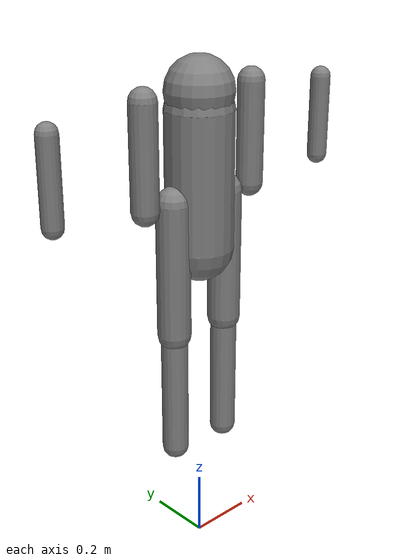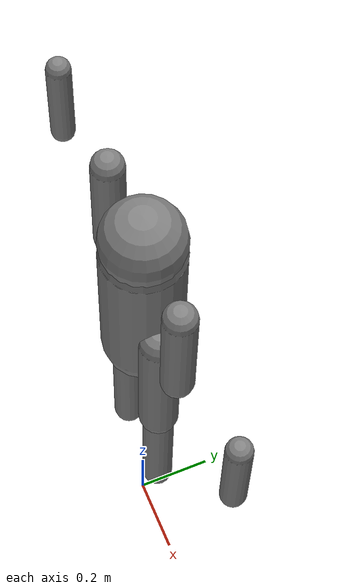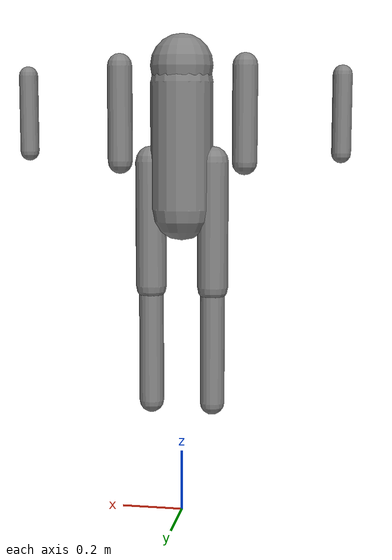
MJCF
<mujoco model="humanoid_test">
            <option gravity="0 0 -9.81" timestep="0.002"/>
            <worldbody>
                <body name="torso" pos="0 0 1.2">
                    <joint type="free"/>
                    <geom type="capsule" size="0.1 0.2" mass="10"/>

                    <body name="head" pos="0 0 0.25">
                        <joint name="neck" type="ball"/>
                        <geom type="sphere" size="0.1" mass="2"/>
                    </body>

                    <body name="upper_arm_right" pos="0.2 0 0.1">
                        <joint name="shoulder_right" type="ball"/>
                        <geom type="capsule" size="0.04 0.15" mass="1.5"/>

                        <body name="lower_arm_right" pos="0.3 0 0">
                            <joint name="elbow_right" type="hinge" axis="0 1 0"/>
                            <geom type="capsule" size="0.03 0.12" mass="1"/>
                        </body>
                    </body>

                    <body name="upper_arm_left" pos="-0.2 0 0.1">
                        <joint name="shoulder_left" type="ball"/>
                        <geom type="capsule" size="0.04 0.15" mass="1.5"/>

                        <body name="lower_arm_left" pos="-0.3 0 0">
                            <joint name="elbow_left" type="hinge" axis="0 1 0"/>
                            <geom type="capsule" size="0.03 0.12" mass="1"/>
                        </body>
                    </body>

                    <body name="upper_leg_right" pos="0.1 0 -0.25">
                        <joint name="hip_right" type="ball"/>
                        <geom type="capsule" size="0.05 0.2" mass="3"/>

                        <body name="lower_leg_right" pos="0 0 -0.4">
                            <joint name="knee_right" type="hinge" axis="0 1 0"/>
                            <geom type="capsule" size="0.04 0.18" mass="2"/>
                        </body>
                    </body>

                    <body name="upper_leg_left" pos="-0.1 0 -0.25">
                        <joint name="hip_left" type="ball"/>
                        <geom type="capsule" size="0.05 0.2" mass="3"/>

                        <body name="lower_leg_left" pos="0 0 -0.4">
                            <joint name="knee_left" type="hinge" axis="0 1 0"/>
                            <geom type="capsule" size="0.04 0.18" mass="2"/>
                        </body>
                    </body>
                </body>
            </worldbody>
        </mujoco>
